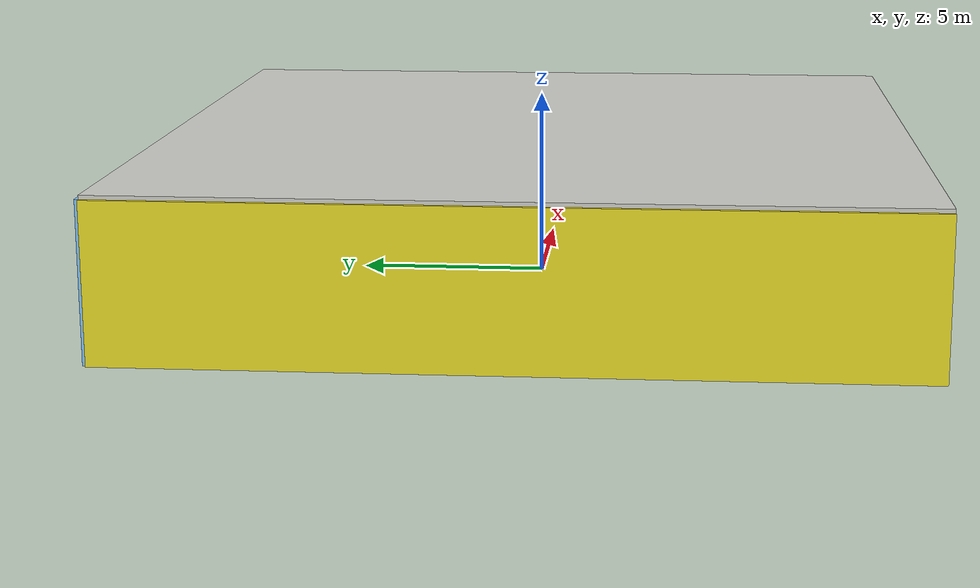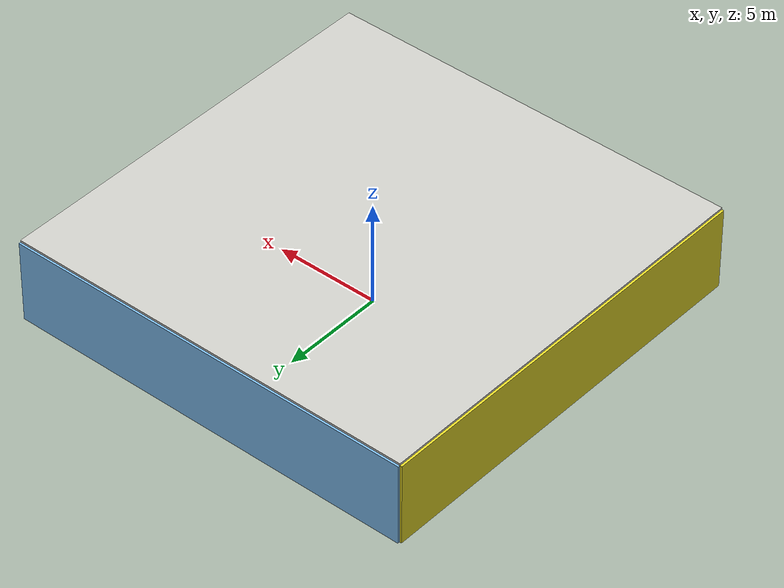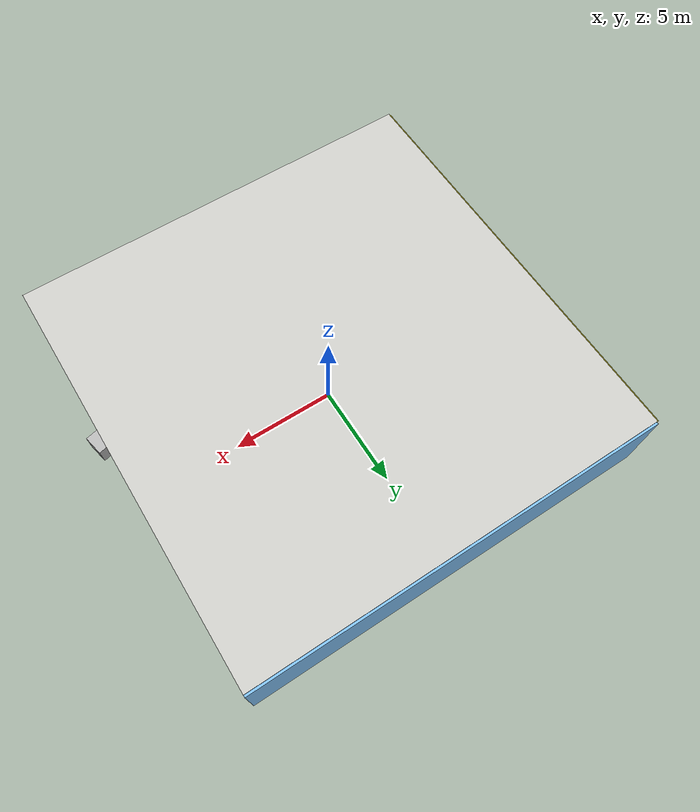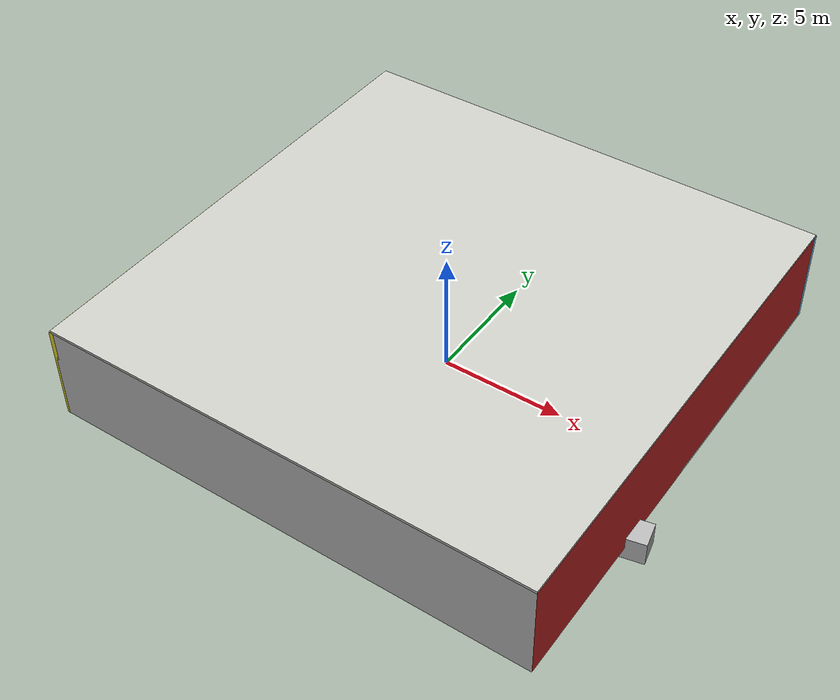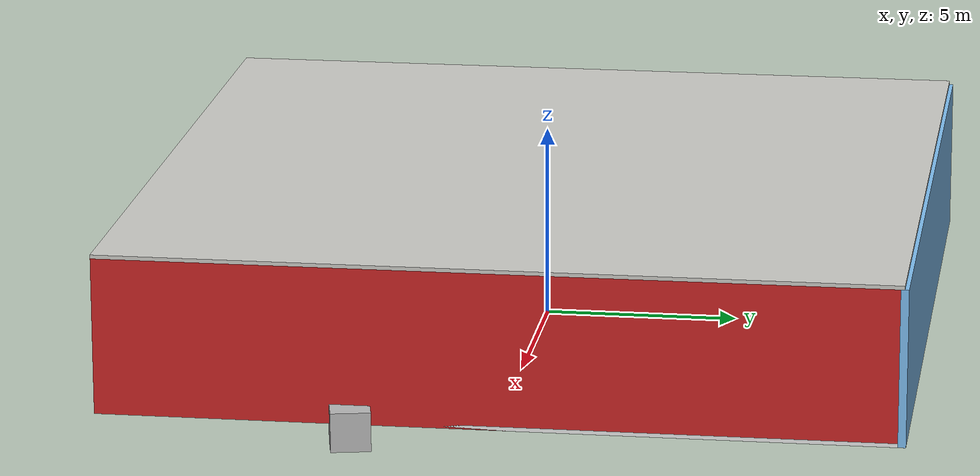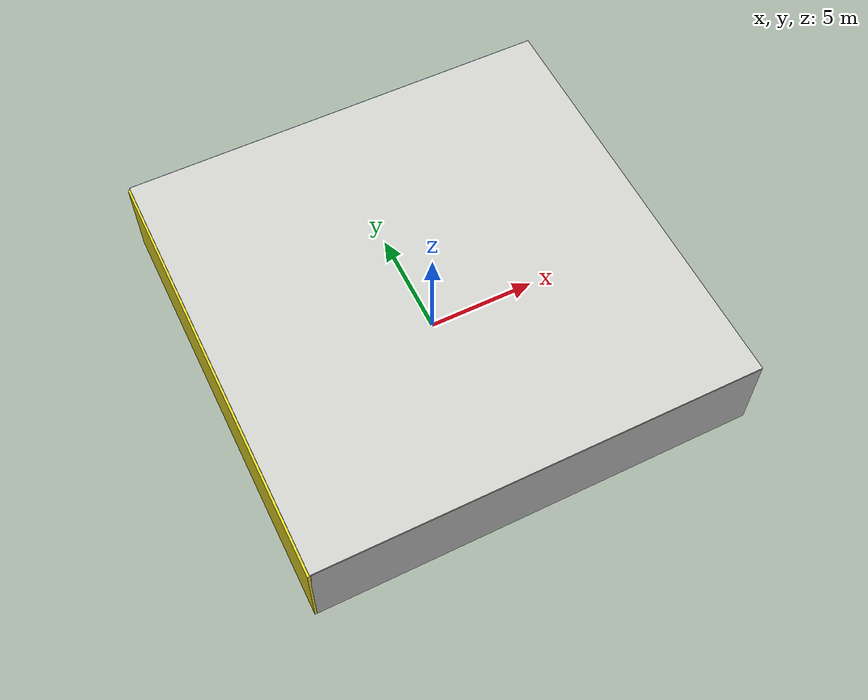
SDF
<sdf version="1.4">
 <world name="default">
  <physics type="ode">
   <max_step_size>0.001</max_step_size>
   <real_time_factor>1</real_time_factor>
   <real_time_update_rate>1000</real_time_update_rate>
   <gravity>0 0 -9.8</gravity>
  </physics>
  <scene><ambient>0.4 0.4 0.4 1</ambient><background>0.7 0.7 0.7 1</background><shadows>1</shadows></scene>
  <model name="Surrounding">
   <static>1</static>
   <link name="Ceiling">
    <collision name="Ceiling_Collision"><geometry><box><size>20 20 0.1</size></box></geometry></collision>
    <visual name="Ceiling_Visual">
     <geometry><box><size>20 20 0.1</size></box></geometry>
     <material>
      <script><uri>file://media/materials/scripts/gazebo.material</uri><name>Gazebo/CeilingTiled</name></script>
     </material>
    </visual>
    <pose>0 0 4.05 0 0 0</pose>
   </link>
   <link name="Wall_South">
    <collision name="Wall_South_Collision">
     <geometry><box><size>20 0 4</size></box></geometry>
     <pose>0 0 2 0 -0 0</pose>
    </collision>
    <visual name="Wall_South_Visual">
     <pose>0 0 2 0 -0 0</pose>
     <geometry><box><size>20 0 4</size></box></geometry>
     <material>
      <script><uri>file://media/materials/scripts/gazebo.material</uri><name>Gazebo/CloudySky</name></script>
     </material>
    </visual>
    <velocity_decay><linear>0</linear><angular>0</angular></velocity_decay>
    <pose>0 -10 0 0 -0 0</pose>
   </link>
   <link name="Wall_East">
    <collision name="Wall_21_Collision">
     <geometry><box><size>20 0 4</size></box></geometry>
     <pose>0 0 2 0 -0 0</pose>
    </collision>
    <visual name="Wall_21_Visual">
     <pose>0 0 2 0 -0 0</pose>
     <geometry><box><size>20 0 4</size></box></geometry>
     <material>
      <script><uri>file://media/materials/scripts/gazebo.material</uri><name>Gazebo/RedGlow</name></script>
     </material>
    </visual>
    <velocity_decay><linear>0</linear><angular>0</angular></velocity_decay>
    <pose>10 0 0 0 -0 1.5708</pose>
   </link>
   <link name="Wall_North">
    <collision name="Wall_22_Collision">
     <geometry><box><size>20 0.2 4</size></box></geometry>
     <pose>0 0 2 0 -0 0</pose>
    </collision>
    <visual name="Wall_22_Visual">
     <pose>0 0 2 0 -0 0</pose>
     <geometry><box><size>20 0.2 4</size></box></geometry>
     <material>
      <script><uri>file://media/materials/scripts/gazebo.material</uri><name>Gazebo/SkyBlue</name></script>
     </material>
    </visual>
    <velocity_decay><linear>0</linear><angular>0</angular></velocity_decay>
    <pose>0 10 0 0 -0 0</pose>
   </link>
   <link name="Wall_West">
    <collision name="Wall_23_Collision">
     <geometry><box><size>20 0.2 4</size></box></geometry>
     <pose>0 0 2 0 -0 0</pose>
    </collision>
    <visual name="Wall_23_Visual">
     <pose>0 0 2 0 -0 0</pose>
     <geometry><box><size>20 0.2 4</size></box></geometry>
     <material>
      <script><uri>file://media/materials/scripts/gazebo.material</uri><name>Gazebo/YellowGlow</name></script>
     </material>
    </visual>
    <velocity_decay><linear>0</linear><angular>0</angular></velocity_decay>
    <pose>-10 0 0 0 0 -1.5708</pose>
   </link>
   <link name="Ground_link">
    <collision name="collision">
     <pose>0 0 .05 0 -0 0</pose>
     <geometry><box><size>20 20 0.1</size></box></geometry>
    </collision>
    <visual name="visual">
     <pose>0 0 .05 0 -0 0</pose>
     <geometry><box><size>20 20 0.1</size></box></geometry>
     <material>
      <script><uri>file://media/materials/scripts/gazebo.material</uri><name>Gazebo/White</name></script>
     </material>
    </visual>
   </link>
   <static>1</static>
  </model>
  <spherical_coordinates>
   <surface_model>EARTH_WGS84</surface_model>
   <latitude_deg>0</latitude_deg>
   <longitude_deg>0</longitude_deg>
   <elevation>0</elevation>
   <heading_deg>0</heading_deg>
  </spherical_coordinates>
  <light name="lightball_0" type="diffuse">
   <diffuse>0.8 0.8 0.8 1</diffuse>
   <specular>0.2 0.2 0.2 1</specular>
   <attenuation>
    <range>100</range>
    <constant>0.7</constant>
    <linear>0.01</linear>
    <quadratic>0.001</quadratic>
   </attenuation>
   <direction>-0.5 0.1 -0.9</direction>
   <pose>-5.28717475041 7.92023311789 2.05778159391 0 0 0</pose>
  </light>
  <light name="lightball_1" type="diffuse">
   <diffuse>0.8 0.8 0.8 1</diffuse>
   <specular>0.2 0.2 0.2 1</specular>
   <attenuation>
    <range>100</range>
    <constant>0.7</constant>
    <linear>0.01</linear>
    <quadratic>0.001</quadratic>
   </attenuation>
   <direction>-0.5 0.1 -0.9</direction>
   <pose>3.22838383963 -2.77171975607 0.768884985068 0 0 0</pose>
  </light>
  <light name="lightball_2" type="diffuse">
   <diffuse>0.8 0.8 0.8 1</diffuse>
   <specular>0.2 0.2 0.2 1</specular>
   <attenuation>
    <range>100</range>
    <constant>0.7</constant>
    <linear>0.01</linear>
    <quadratic>0.001</quadratic>
   </attenuation>
   <direction>-0.5 0.1 -0.9</direction>
   <pose>4.97156026855 8.87447978697 2.98779990922 0 0 0</pose>
  </light>
  <include><uri>model://table</uri><pose>-8.161168411 -6.66274206184 0 0 0 1.74043141698</pose></include>
  <include><uri>model://cabinet</uri><pose>0.715151789525 1.34474021814 0 0 0 1.81650715298</pose></include>
  <include>
   <uri>model://construction_cone</uri>
   <pose>4.90859970709 0.489860557762 0 0 0 2.66313086214</pose>
  </include>
  <include>
   <uri>model://textured_shapes</uri>
   <pose>8.68326227716 -3.85986589137 0 0 0 1.78077003157</pose>
  </include>
 </world>
</sdf>

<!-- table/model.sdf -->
<sdf version="1.5">
  <model name="table">
    <static>true</static>
    <link name="link">
      <collision name="surface">
        <pose>0 0 1.0 0 0 0</pose>
        <geometry>
          <box>
            <size>1.5 0.8 0.03</size>
          </box>
        </geometry>
        <surface>
          <friction>
            <ode>
              <mu>0.6</mu>
              <mu2>0.6</mu2>
            </ode>
          </friction>
        </surface>
      </collision>
      <visual name="visual1">
        <pose>0 0 1.0 0 0 0</pose>
        <geometry>
          <box>
            <size>1.5 0.8 0.03</size>
          </box>
        </geometry>
        <material>
          <script>
            <uri>model://media/materials/scripts/gazebo.material</uri>
            <name>Gazebo/Wood</name>
          </script>
        </material>
      </visual>
      <collision name="front_left_leg">
        <pose>0.68 0.38 0.5 0 0 0</pose>
        <geometry>
          <cylinder>
            <radius>0.02</radius>
            <length>1.0</length>
          </cylinder>
        </geometry>
      </collision>
      <visual name="front_left_leg">
        <pose>0.68 0.38 0.5 0 0 0</pose>
        <geometry>
          <cylinder>
            <radius>0.02</radius>
            <length>1.0</length>
          </cylinder>
        </geometry>
        <material>
          <script>
            <uri>model://media/materials/scripts/gazebo.material</uri>
            <name>Gazebo/Grey</name>
          </script>
        </material>
      </visual>
      <collision name="front_right_leg">
        <pose>0.68 -0.38 0.5 0 0 0</pose>
        <geometry>
          <cylinder>
            <radius>0.02</radius>
            <length>1.0</length>
          </cylinder>
        </geometry>
      </collision>
      <visual name="front_right_leg">
        <pose>0.68 -0.38 0.5 0 0 0</pose>
        <geometry>
          <cylinder>
            <radius>0.02</radius>
            <length>1.0</length>
          </cylinder>
        </geometry>
        <material>
          <script>
            <uri>model://media/materials/scripts/gazebo.material</uri>
            <name>Gazebo/Grey</name>
          </script>
        </material>
      </visual>
      <collision name="back_right_leg">
        <pose>-0.68 -0.38 0.5 0 0 0</pose>
        <geometry>
          <cylinder>
            <radius>0.02</radius>
            <length>1.0</length>
          </cylinder>
        </geometry>
      </collision>
      <visual name="back_right_leg">
        <pose>-0.68 -0.38 0.5 0 0 0</pose>
        <geometry>
          <cylinder>
            <radius>0.02</radius>
            <length>1.0</length>
          </cylinder>
        </geometry>
        <material>
          <script>
            <uri>model://media/materials/scripts/gazebo.material</uri>
            <name>Gazebo/Grey</name>
          </script>
        </material>
      </visual>
      <collision name="back_left_leg">
        <pose>-0.68 0.38 0.5 0 0 0</pose>
        <geometry>
          <cylinder>
            <radius>0.02</radius>
            <length>1.0</length>
          </cylinder>
        </geometry>
      </collision>
      <visual name="back_left_leg">
        <pose>-0.68 0.38 0.5 0 0 0</pose>
        <geometry>
          <cylinder>
            <radius>0.02</radius>
            <length>1.0</length>
          </cylinder>
        </geometry>
        <material>
          <script>
            <uri>model://media/materials/scripts/gazebo.material</uri>
            <name>Gazebo/Grey</name>
          </script>
        </material>
      </visual>
    </link>
  </model>
</sdf>

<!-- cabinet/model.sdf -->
<sdf version="1.5">
  <model name="cabinet">
    <static>true</static>
    <link name="cabinet_bottom_plate">
      <inertial>
        <pose>0 0 -1 0 0 0</pose>
        <inertia>
          <ixx>2.050000</ixx>
          <ixy>0</ixy>
          <ixz>0</ixz>
          <iyy>2.050000</iyy>
          <iyz>0</iyz>
          <izz>2.050000</izz>
        </inertia>
        <mass>25.000000</mass>
      </inertial>
      <collision name="cabinet_bottom_plate_geom">
        <pose>0 0 0.010000 0 0 0</pose>
        <geometry>
          <box>
            <size>0.450000 0.450000 0.020000</size>
          </box>
        </geometry>
      </collision>
      <visual name="cabinet_bottom_plate_geom_visual">
        <pose>0 0 0.010000 0 0 0</pose>
        <geometry>
          <box>
            <size>0.450000 0.450000 0.020000</size>
          </box>
        </geometry>
        <material>
          <script>
            <uri>model://media/materials/scripts/gazebo.material</uri>
            <name>Gazebo/Wood</name>
          </script>
        </material>
      </visual>
      <collision name="cabinet_bottom_plate_geom_cabinet_back_plate">
        <pose>0.235000 0 0.510000 0 0 0</pose>
        <geometry>
          <box>
            <size>0.020000 0.450000 1.020000</size>
          </box>
        </geometry>
      </collision>
      <visual name="cabinet_bottom_plate_geom_cabinet_back_plate_visual">
        <pose>0.235000 0 0.510000 0 0 0</pose>
        <geometry>
          <box>
            <size>0.020000 0.450000 1.020000</size>
          </box>
        </geometry>
        <material>
          <script>
            <uri>model://media/materials/scripts/gazebo.material</uri>
            <name>Gazebo/Wood</name>
          </script>
        </material>
      </visual>
      <collision name="cabinet_bottom_plate_geom_cabinet_left_plate">
        <pose>0 0.235000 0.510000 0 0 0</pose>
        <geometry>
          <box>
            <size>0.450000 0.020000 1.020000</size>
          </box>
        </geometry>
      </collision>
      <visual name="cabinet_bottom_plate_geom_cabinet_left_plate_visual">
        <pose>0 0.235000 0.510000 0 0 0</pose>
        <geometry>
          <box>
            <size>0.450000 0.020000 1.020000</size>
          </box>
        </geometry>
        <material>
          <script>
            <uri>model://media/materials/scripts/gazebo.material</uri>
            <name>Gazebo/Wood</name>
          </script>
        </material>
      </visual>
      <collision name="cabinet_bottom_plate_geom_cabinet_middle_plate">
        <pose>0 0 0.510000 0 0 0</pose>
        <geometry>
          <box>
            <size>0.450000 0.450000 0.020000</size>
          </box>
        </geometry>
      </collision>
      <visual name="cabinet_bottom_plate_geom_cabinet_middle_plate_visual">
        <pose>0 0 0.510000 0 0 0</pose>
        <geometry>
          <box>
            <size>0.450000 0.450000 0.020000</size>
          </box>
        </geometry>
        <material>
          <script>
            <uri>model://media/materials/scripts/gazebo.material</uri>
            <name>Gazebo/Wood</name>
          </script>
        </material>
      </visual>
      <collision name="cabinet_bottom_plate_geom_cabinet_right_plate">
        <pose>0 -0.235000 0.510000 0 0 0</pose>
        <geometry>
          <box>
            <size>0.450000 0.020000 1.020000</size>
          </box>
        </geometry>
      </collision>
      <visual name="cabinet_bottom_plate_geom_cabinet_right_plate_visual">
        <pose>0 -0.235000 0.510000 0 0 0</pose>
        <geometry>
          <box>
            <size>0.450000 0.020000 1.020000</size>
          </box>
        </geometry>
        <material>
          <script>
            <uri>model://media/materials/scripts/gazebo.material</uri>
            <name>Gazebo/Wood</name>
          </script>
        </material>
      </visual>
      <collision name="cabinet_bottom_plate_geom_cabinet_top_plate">
        <pose>0 0 1.010000 0 0 0</pose>
        <geometry>
          <box>
            <size>0.450000 0.450000 0.020000</size>
          </box>
        </geometry>
      </collision>
      <visual name="cabinet_bottom_plate_geom_cabinet_top_plate_visual">
        <pose>0 0 1.010000 0 0 0</pose>
        <geometry>
          <box>
            <size>0.450000 0.450000 0.020000</size>
          </box>
        </geometry>
        <material>
          <script>
            <uri>model://media/materials/scripts/gazebo.material</uri>
            <name>Gazebo/Wood</name>
          </script>
        </material>
      </visual>
    </link>
  </model>
</sdf>

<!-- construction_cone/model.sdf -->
<sdf version="1.5">
  <model name="Construction Cone">
    <link name="link">
      <collision name="collision">
        <geometry>
          <mesh>
            <scale>10 10 10</scale>
            <uri>file://isr-testbed/construction_cone/meshes/construction_cone.dae</uri>
          </mesh>
        </geometry>
      </collision>
      <visual name="visual">
        <geometry>
          <mesh>
            <scale>10 10 10</scale>
            <uri>file://isr-testbed/construction_cone/meshes/construction_cone.dae</uri>
          </mesh>
        </geometry>
      </visual>
    </link>
  </model>
</sdf>

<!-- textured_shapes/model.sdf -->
<sdf version="1.6">
  <model name="textured_shapes">
    <pose>0 0 0.5 0 0 0</pose>
    <link name="box">
      <pose>0 -1.5 0 0 0 0</pose>
      <collision name="collision">
        <geometry>
          <box>
            <size>1 1 1</size>
          </box>
        </geometry>
      </collision>
      <visual name="visual">
        <geometry>
          <box>
            <size>1 1 1</size>
          </box>
        </geometry>
        <material>
          <script>
            <uri>model://../model_source/models/textured_shapes/materials/scripts</uri>
            <uri>model://../model_source/models/textured_shapes/materials/textures</uri>
            <name>TexturedShape/Squares</name>
          </script>
        </material>
      </visual>
    </link>
    <link name="sphere">
      <collision name="collision">
        <geometry>
          <sphere>
            <radius>0.5</radius>
          </sphere>
        </geometry>
      </collision>
      <visual name="visual">
        <geometry>
          <sphere>
            <radius>0.5</radius>
          </sphere>
        </geometry>
        <material>
          <script>
            <uri>model://../model_source/models/textured_shapes/materials/scripts</uri>
            <uri>model://../model_source/models/textured_shapes/materials/textures</uri>
            <name>TexturedShape/Squares</name>
          </script>
        </material>
      </visual>
    </link>
    <link name="cylinder">
      <pose>0 1.5 0 0 0 0</pose>
      <collision name="collision">
        <geometry>
          <cylinder>
            <radius>0.5</radius>
            <length>1</length>
          </cylinder>
        </geometry>
      </collision>
      <visual name="visual">
        <geometry>
          <cylinder>
            <radius>0.5</radius>
            <length>1</length>
          </cylinder>
        </geometry>
        <material>
          <script>
            <uri>model://../model_source/models/textured_shapes/materials/scripts</uri>
            <uri>model://../model_source/models/textured_shapes/materials/textures</uri>
            <name>TexturedShape/Squares</name>
          </script>
        </material>
      </visual>
    </link>
  </model>
</sdf>
